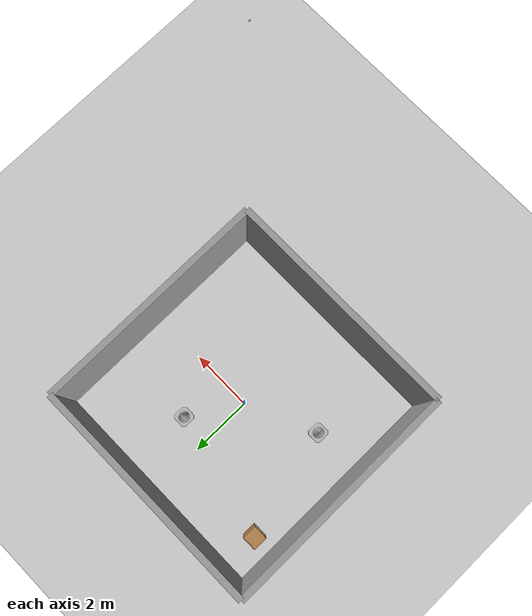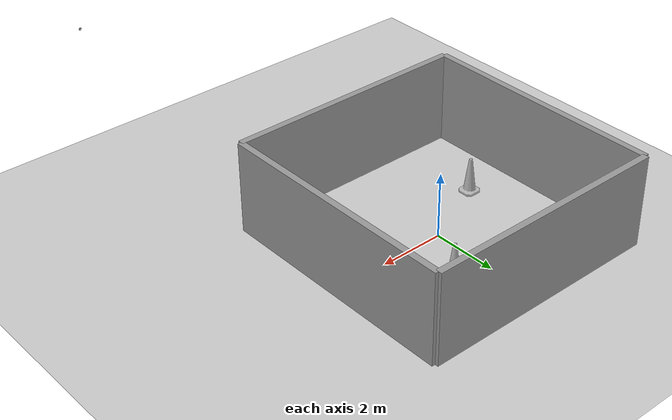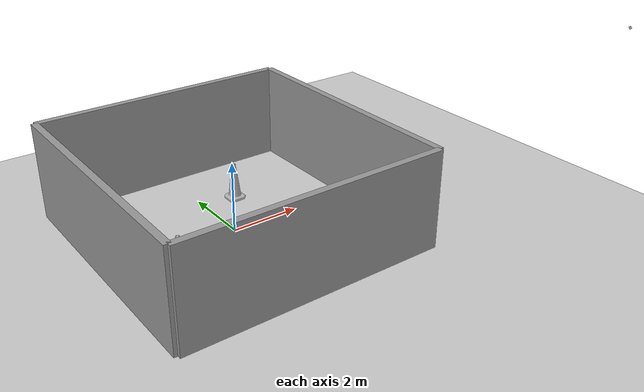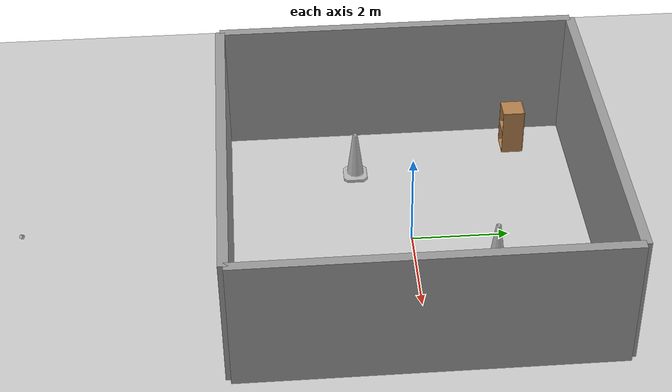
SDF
<sdf version="1.6">
 <world name="wheeltec_slam_nav">
  <include><uri>model://ground_plane</uri></include>
  <include><uri>model://sun</uri></include>
  <include><name>wall_north</name><uri>model://grey_wall</uri><pose>0 3.75 0 0 0 0</pose></include>
  <include><name>wall_south</name><uri>model://grey_wall</uri><pose>0 -3.75 0 0 0 0</pose></include>
  <include><name>wall_east</name><uri>model://grey_wall</uri><pose>3.75 0 0 0 0 1.5708</pose></include>
  <include><name>wall_west</name><uri>model://grey_wall</uri><pose>-3.75 0 0 0 0 1.5708</pose></include>
  <include><name>cabinet</name><uri>model://cabinet</uri><pose>-3.0 2.5 0 0 0 1.5708</pose></include>
  <include><name>cone_1</name><uri>model://construction_cone</uri><pose>-2.2 -1.0 0 0 0 0</pose></include>
  <include><name>cone_2</name><uri>model://construction_cone</uri><pose>1.0 1.6 0 0 0 0</pose></include>
  <model name="scene_camera">
   <static>true</static>
   <pose>6.5 -6.5 6.0 0 0.578 2.356</pose>
   <link name="link">
    <visual name="vis"><geometry><box><size>0.05 0.05 0.05</size></box></geometry></visual>
    <sensor type="camera" name="scene_cam">
     <always_on>true</always_on>
     <update_rate>15</update_rate>
     <camera name="scene">
      <horizontal_fov>1.05</horizontal_fov>
      <image><width>960</width><height>540</height><format>R8G8B8</format></image>
      <clip><near>0.1</near><far>100</far></clip>
     </camera>
     <plugin name="scene_cam_controller" filename="libgazebo_ros_camera.so">
      <ros>
       <namespace>/sim_scene/chassis</namespace>
       <remapping>scene/image_raw:=image_raw</remapping>
       <remapping>scene/camera_info:=camera_info</remapping>
      </ros>
      <camera_name>scene</camera_name>
      <frame_name>scene_camera</frame_name>
     </plugin>
    </sensor>
   </link>
  </model>
  <physics name="default_physics" default="0" type="ode">
   <max_step_size>0.001</max_step_size>
   <real_time_factor>1.0</real_time_factor>
   <real_time_update_rate>1000</real_time_update_rate>
  </physics>
 </world>
</sdf>

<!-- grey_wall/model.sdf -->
<sdf version="1.5">
  <model name="grey_wall">
    <static>true</static>
    <link name="link">
      <pose>0 0 1.4 0 0 0</pose>
      <collision name="collision">
        <geometry>
          <box>
            <size>7.5 0.2 2.8</size>
          </box>
        </geometry>
      </collision>
      <visual name="visual">
        <cast_shadows>false</cast_shadows>
        <geometry>
          <box>
            <size>7.5 0.2 2.8</size>
          </box>
        </geometry>
        <material>
          <script>
            <uri>model://../model_source/models/grey_wall/materials/scripts</uri>
            <uri>model://../model_source/models/grey_wall/materials/textures</uri>
            <name>vrc/grey_wall</name>
          </script>
        </material>
      </visual>
    </link>
  </model>
</sdf>

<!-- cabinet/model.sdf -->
<sdf version="1.5">
  <model name="cabinet">
    <static>true</static>
    <link name="cabinet_bottom_plate">
      <inertial>
        <pose>0 0 -1 0 0 0</pose>
        <inertia>
          <ixx>2.050000</ixx>
          <ixy>0</ixy>
          <ixz>0</ixz>
          <iyy>2.050000</iyy>
          <iyz>0</iyz>
          <izz>2.050000</izz>
        </inertia>
        <mass>25.000000</mass>
      </inertial>
      <collision name="cabinet_bottom_plate_geom">
        <pose>0 0 0.010000 0 0 0</pose>
        <geometry>
          <box>
            <size>0.450000 0.450000 0.020000</size>
          </box>
        </geometry>
      </collision>
      <visual name="cabinet_bottom_plate_geom_visual">
        <pose>0 0 0.010000 0 0 0</pose>
        <geometry>
          <box>
            <size>0.450000 0.450000 0.020000</size>
          </box>
        </geometry>
        <material>
          <script>
            <uri>model://media/materials/scripts/gazebo.material</uri>
            <name>Gazebo/Wood</name>
          </script>
        </material>
      </visual>
      <collision name="cabinet_bottom_plate_geom_cabinet_back_plate">
        <pose>0.235000 0 0.510000 0 0 0</pose>
        <geometry>
          <box>
            <size>0.020000 0.450000 1.020000</size>
          </box>
        </geometry>
      </collision>
      <visual name="cabinet_bottom_plate_geom_cabinet_back_plate_visual">
        <pose>0.235000 0 0.510000 0 0 0</pose>
        <geometry>
          <box>
            <size>0.020000 0.450000 1.020000</size>
          </box>
        </geometry>
        <material>
          <script>
            <uri>model://media/materials/scripts/gazebo.material</uri>
            <name>Gazebo/Wood</name>
          </script>
        </material>
      </visual>
      <collision name="cabinet_bottom_plate_geom_cabinet_left_plate">
        <pose>0 0.235000 0.510000 0 0 0</pose>
        <geometry>
          <box>
            <size>0.450000 0.020000 1.020000</size>
          </box>
        </geometry>
      </collision>
      <visual name="cabinet_bottom_plate_geom_cabinet_left_plate_visual">
        <pose>0 0.235000 0.510000 0 0 0</pose>
        <geometry>
          <box>
            <size>0.450000 0.020000 1.020000</size>
          </box>
        </geometry>
        <material>
          <script>
            <uri>model://media/materials/scripts/gazebo.material</uri>
            <name>Gazebo/Wood</name>
          </script>
        </material>
      </visual>
      <collision name="cabinet_bottom_plate_geom_cabinet_middle_plate">
        <pose>0 0 0.510000 0 0 0</pose>
        <geometry>
          <box>
            <size>0.450000 0.450000 0.020000</size>
          </box>
        </geometry>
      </collision>
      <visual name="cabinet_bottom_plate_geom_cabinet_middle_plate_visual">
        <pose>0 0 0.510000 0 0 0</pose>
        <geometry>
          <box>
            <size>0.450000 0.450000 0.020000</size>
          </box>
        </geometry>
        <material>
          <script>
            <uri>model://media/materials/scripts/gazebo.material</uri>
            <name>Gazebo/Wood</name>
          </script>
        </material>
      </visual>
      <collision name="cabinet_bottom_plate_geom_cabinet_right_plate">
        <pose>0 -0.235000 0.510000 0 0 0</pose>
        <geometry>
          <box>
            <size>0.450000 0.020000 1.020000</size>
          </box>
        </geometry>
      </collision>
      <visual name="cabinet_bottom_plate_geom_cabinet_right_plate_visual">
        <pose>0 -0.235000 0.510000 0 0 0</pose>
        <geometry>
          <box>
            <size>0.450000 0.020000 1.020000</size>
          </box>
        </geometry>
        <material>
          <script>
            <uri>model://media/materials/scripts/gazebo.material</uri>
            <name>Gazebo/Wood</name>
          </script>
        </material>
      </visual>
      <collision name="cabinet_bottom_plate_geom_cabinet_top_plate">
        <pose>0 0 1.010000 0 0 0</pose>
        <geometry>
          <box>
            <size>0.450000 0.450000 0.020000</size>
          </box>
        </geometry>
      </collision>
      <visual name="cabinet_bottom_plate_geom_cabinet_top_plate_visual">
        <pose>0 0 1.010000 0 0 0</pose>
        <geometry>
          <box>
            <size>0.450000 0.450000 0.020000</size>
          </box>
        </geometry>
        <material>
          <script>
            <uri>model://media/materials/scripts/gazebo.material</uri>
            <name>Gazebo/Wood</name>
          </script>
        </material>
      </visual>
    </link>
  </model>
</sdf>

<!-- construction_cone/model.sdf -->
<sdf version="1.5">
  <model name="Construction Cone">
    <link name="link">
      <collision name="collision">
        <geometry>
          <mesh>
            <scale>10 10 10</scale>
            <uri>file://isr-testbed/construction_cone/meshes/construction_cone.dae</uri>
          </mesh>
        </geometry>
      </collision>
      <visual name="visual">
        <geometry>
          <mesh>
            <scale>10 10 10</scale>
            <uri>file://isr-testbed/construction_cone/meshes/construction_cone.dae</uri>
          </mesh>
        </geometry>
      </visual>
    </link>
  </model>
</sdf>
